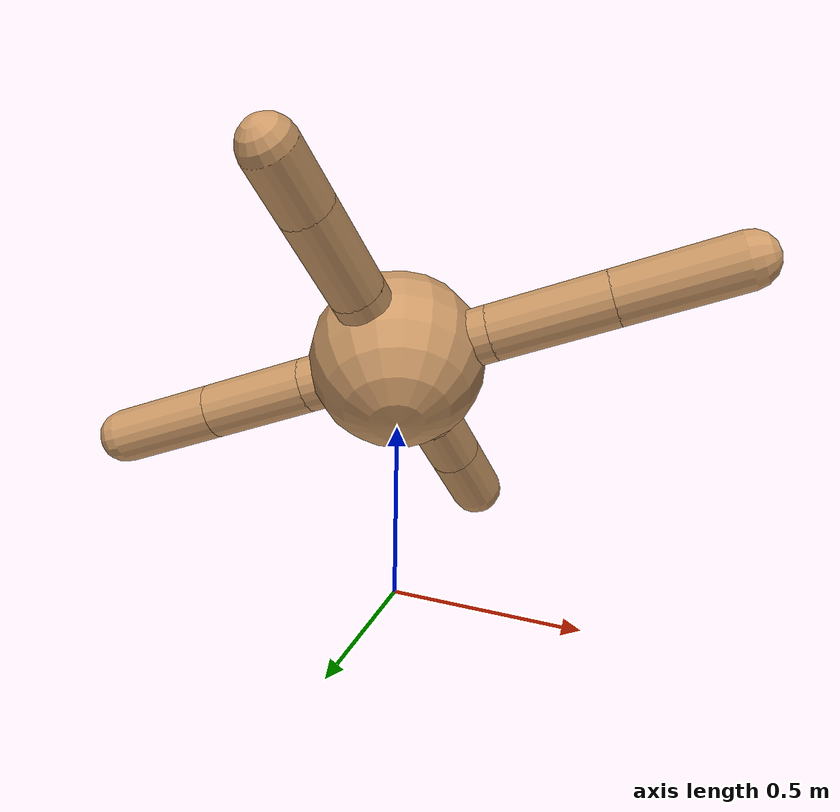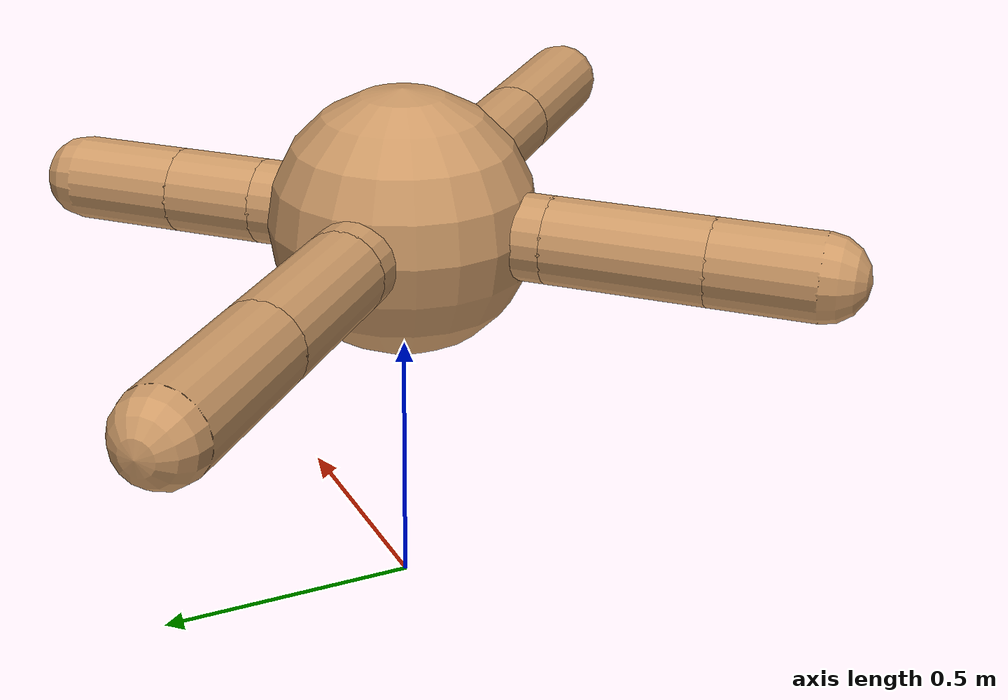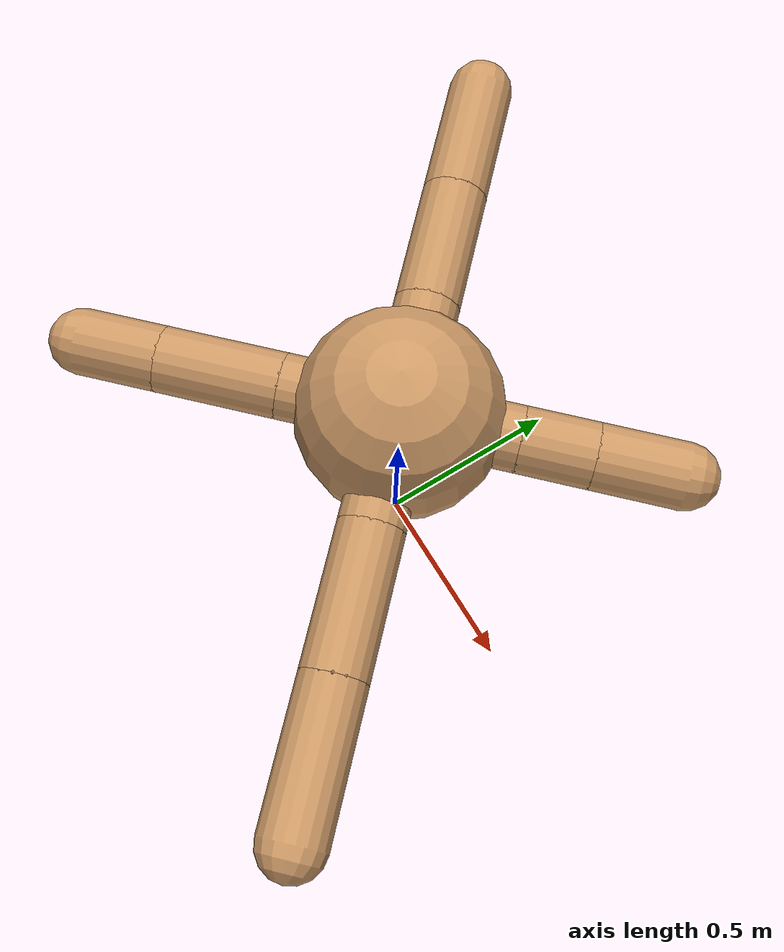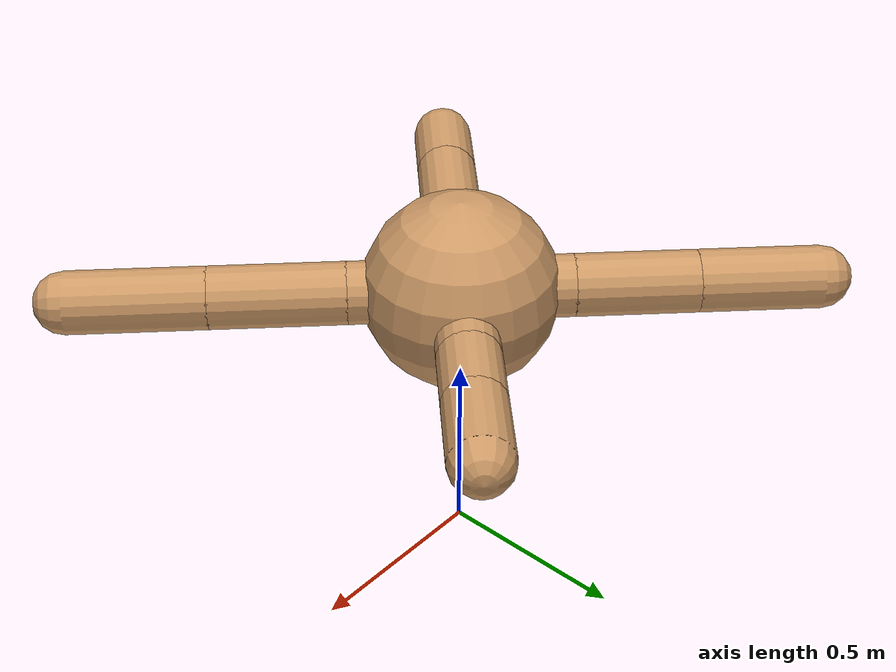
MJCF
<?xml version="1.0" ?>
<mujoco>
    <default>
        <joint armature="1" damping="1" limited="true"/>
        <geom condim="3" conaffinity="0" density="5.0" friction="1 0.5 0.5" margin="0.01" rgba="0.8 0.6 0.4 1"/>
    </default>
    <worldbody>
        <body name="Base" pos="0.0 0.0 0.75">
            <joint type="free" armature="0" damping="0" limited="false" margin="0.01" pos="0 0 0"/>
            <geom type="sphere" rgba="0.8 0.6 0.4 1" size="0.25"/>
            <camera name="track" mode="trackcom" pos="0 -3 0.3" xyaxes="1 0 0 0 0 1"/>
            <geom name="limb0" type="capsule" fromto="0 0 0 0.2 0.2 0.0" size="0.08"/>
            <body name="rod_0.1" pos="0.26108681695399194 0.26108681695399194 0.0">
                <geom type="capsule" fromto="-0.0610868169539919 -0.0610868169539919 -0.0 0.0610868169539919 0.0610868169539919 0.0" size="0.08" name="geom_0.1"/>
                <site pos="0 0 0" quat="0.9238795325112867 0.0 0.0 0.3826834323650898" name="site_0.1"/>
                <joint type="hinge" pos="-0.0610868169539919 -0.0610868169539919 -0.0" axis="0 0 1" range="-30 30" name="joint_Base=rod_0.1"/>
                <body pos="-0.0610868169539919 -0.0610868169539919 -0.0" name="p0">
                    <site name="p0"/>
                </body>
                <body name="rod_1.2" pos="0.13478721588851914 0.13478721588851914 0.0">
                    <geom type="capsule" fromto="-0.07370039893452723 -0.07370039893452723 -0.0 0.07370039893452723 0.07370039893452723 0.0" size="0.08" name="geom_1.2"/>
                    <site pos="0 0 0" quat="0.9238795325112867 0.0 0.0 0.3826834323650898" name="site_1.2"/>
                    <joint type="hinge" pos="-0.07370039893452723 -0.07370039893452723 -0.0" axis="-1 1 0" range="30 70" name="joint_rod_0.1=rod_1.2"/>
                    <body pos="-0.07370039893452723 -0.07370039893452723 -0.0" name="p1">
                        <site name="p1"/>
                    </body>
                </body>
            </body>
            <geom name="limb1" type="capsule" fromto="0 0 0 -0.2 0.2 0.0" size="0.08"/>
            <body name="rod_3.4" pos="-0.3095760336843627 0.3095760336843627 0.0">
                <geom type="capsule" fromto="0.10957603368436267 -0.10957603368436267 -0.0 -0.10957603368436267 0.10957603368436267 0.0" size="0.08" name="geom_3.4"/>
                <site pos="0 0 0" quat="0.38268343236508984 0.0 -0.0 0.9238795325112867" name="site_3.4"/>
                <joint type="hinge" pos="0.10957603368436267 -0.10957603368436267 -0.0" axis="0 0 1" range="-30 30" name="joint_Base=rod_3.4"/>
                <body pos="0.10957603368436267 -0.10957603368436267 -0.0" name="p3">
                    <site name="p3"/>
                </body>
                <body name="rod_4.5" pos="-0.21932080088284098 0.21932080088284098 0.0">
                    <geom type="capsule" fromto="0.10974476719847831 -0.10974476719847831 -0.0 -0.10974476719847831 0.10974476719847831 0.0" size="0.08" name="geom_4.5"/>
                    <site pos="0 0 0" quat="0.38268343236508984 0.0 -0.0 0.9238795325112867" name="site_4.5"/>
                    <joint type="hinge" pos="0.10974476719847831 -0.10974476719847831 -0.0" axis="1 1 0" range="-70 -30" name="joint_rod_3.4=rod_4.5"/>
                    <body pos="0.10974476719847831 -0.10974476719847831 -0.0" name="p4">
                        <site name="p4"/>
                    </body>
                </body>
            </body>
            <geom name="limb2" type="capsule" fromto="0 0 0 -0.2 -0.2 0.0" size="0.08"/>
            <body name="rod_6.7" pos="-0.3034224318487224 -0.3034224318487224 0.0">
                <geom type="capsule" fromto="0.10342243184872238 0.10342243184872238 -0.0 -0.10342243184872238 -0.10342243184872238 0.0" size="0.08" name="geom_6.7"/>
                <site pos="0 0 0" quat="0.38268343236508984 0.0 -0.0 -0.9238795325112867" name="site_6.7"/>
                <joint type="hinge" pos="0.10342243184872238 0.10342243184872238 -0.0" axis="0 0 1" range="-30 30" name="joint_Base=rod_6.7"/>
                <body pos="0.10342243184872238 0.10342243184872238 -0.0" name="p6">
                    <site name="p6"/>
                </body>
                <body name="rod_7.8" pos="-0.1720302747799328 -0.1720302747799328 0.0">
                    <geom type="capsule" fromto="0.06860784293121042 0.06860784293121042 -0.0 -0.06860784293121042 -0.06860784293121042 0.0" size="0.08" name="geom_7.8"/>
                    <site pos="0 0 0" quat="0.38268343236508984 0.0 -0.0 -0.9238795325112867" name="site_7.8"/>
                    <joint type="hinge" pos="0.06860784293121042 0.06860784293121042 -0.0" axis="-1 1 0" range="-70 -30" name="joint_rod_6.7=rod_7.8"/>
                    <body pos="0.06860784293121042 0.06860784293121042 -0.0" name="p7">
                        <site name="p7"/>
                    </body>
                </body>
            </body>
            <geom name="limb3" type="capsule" fromto="0 0 0 0.2 -0.2 0.0" size="0.08"/>
            <body name="rod_9.10" pos="0.32120399285714785 -0.32120399285714785 0.0">
                <geom type="capsule" fromto="-0.12120399285714781 0.12120399285714781 -0.0 0.12120399285714781 -0.12120399285714781 0.0" size="0.08" name="geom_9.10"/>
                <site pos="0 0 0" quat="0.9238795325112867 0.0 0.0 -0.3826834323650898" name="site_9.10"/>
                <joint type="hinge" pos="-0.12120399285714781 0.12120399285714781 -0.0" axis="0 0 1" range="-30 30" name="joint_Base=rod_9.10"/>
                <body pos="-0.12120399285714781 0.12120399285714781 -0.0" name="p9">
                    <site name="p9"/>
                </body>
                <body name="rod_10.11" pos="0.2449179903109007 -0.2449179903109007 0.0">
                    <geom type="capsule" fromto="-0.12371399745375289 0.12371399745375289 -0.0 0.12371399745375289 -0.12371399745375289 0.0" size="0.08" name="geom_10.11"/>
                    <site pos="0 0 0" quat="0.9238795325112867 0.0 0.0 -0.3826834323650898" name="site_10.11"/>
                    <joint type="hinge" pos="-0.12371399745375289 0.12371399745375289 -0.0" axis="1 1 0" range="30 70" name="joint_rod_9.10=rod_10.11"/>
                    <body pos="-0.12371399745375289 0.12371399745375289 -0.0" name="p10">
                        <site name="p10"/>
                    </body>
                </body>
            </body>
        </body>
    </worldbody>
    <actuator>
        <motor gear="150" ctrlrange="-1.0 1.0" ctrllimited="true" joint="joint_Base=rod_0.1"/>
        <motor gear="150" ctrlrange="-1.0 1.0" ctrllimited="true" joint="joint_rod_0.1=rod_1.2"/>
        <motor gear="150" ctrlrange="-1.0 1.0" ctrllimited="true" joint="joint_Base=rod_3.4"/>
        <motor gear="150" ctrlrange="-1.0 1.0" ctrllimited="true" joint="joint_rod_3.4=rod_4.5"/>
        <motor gear="150" ctrlrange="-1.0 1.0" ctrllimited="true" joint="joint_Base=rod_6.7"/>
        <motor gear="150" ctrlrange="-1.0 1.0" ctrllimited="true" joint="joint_rod_6.7=rod_7.8"/>
        <motor gear="150" ctrlrange="-1.0 1.0" ctrllimited="true" joint="joint_Base=rod_9.10"/>
        <motor gear="150" ctrlrange="-1.0 1.0" ctrllimited="true" joint="joint_rod_9.10=rod_10.11"/>
    </actuator>
    <sensor>
        <accelerometer site="site_0.1"/>
        <gyro site="site_0.1"/>
        <magnetometer site="site_0.1"/>
        <accelerometer site="site_1.2"/>
        <gyro site="site_1.2"/>
        <magnetometer site="site_1.2"/>
        <accelerometer site="site_3.4"/>
        <gyro site="site_3.4"/>
        <magnetometer site="site_3.4"/>
        <accelerometer site="site_4.5"/>
        <gyro site="site_4.5"/>
        <magnetometer site="site_4.5"/>
        <accelerometer site="site_6.7"/>
        <gyro site="site_6.7"/>
        <magnetometer site="site_6.7"/>
        <accelerometer site="site_7.8"/>
        <gyro site="site_7.8"/>
        <magnetometer site="site_7.8"/>
        <accelerometer site="site_9.10"/>
        <gyro site="site_9.10"/>
        <magnetometer site="site_9.10"/>
        <accelerometer site="site_10.11"/>
        <gyro site="site_10.11"/>
        <magnetometer site="site_10.11"/>
    </sensor>
    <contact>
        <pair geom1="geom_0.1" geom2="floor"/>
        <pair geom1="geom_1.2" geom2="floor"/>
        <pair geom1="geom_3.4" geom2="floor"/>
        <pair geom1="geom_4.5" geom2="floor"/>
        <pair geom1="geom_6.7" geom2="floor"/>
        <pair geom1="geom_7.8" geom2="floor"/>
        <pair geom1="geom_9.10" geom2="floor"/>
        <pair geom1="geom_10.11" geom2="floor"/>
    </contact>
</mujoco>
